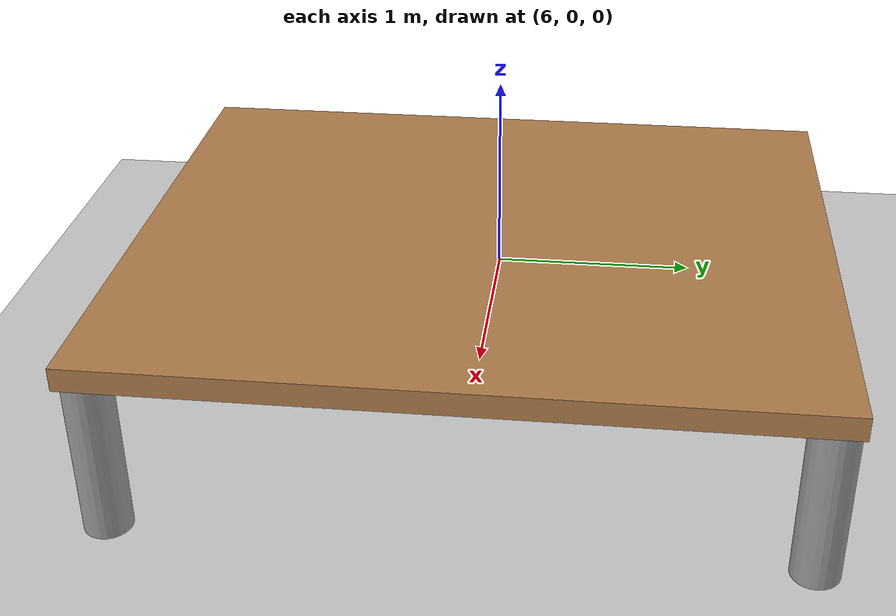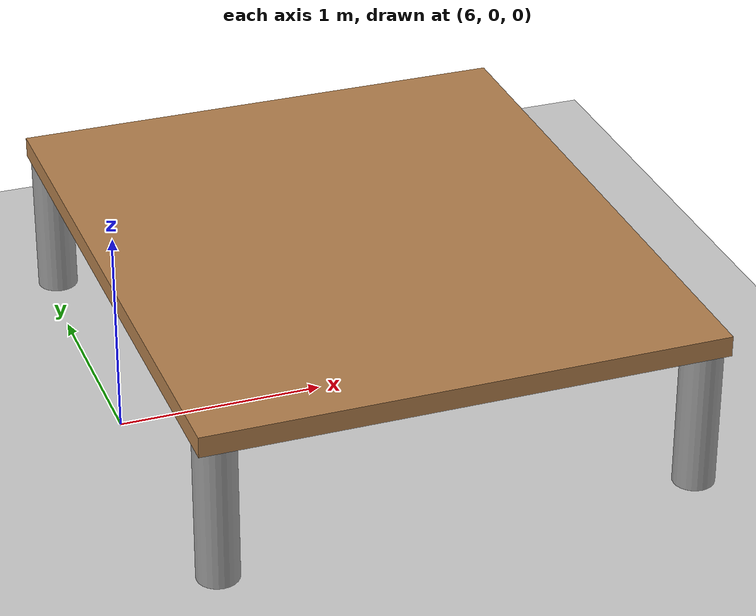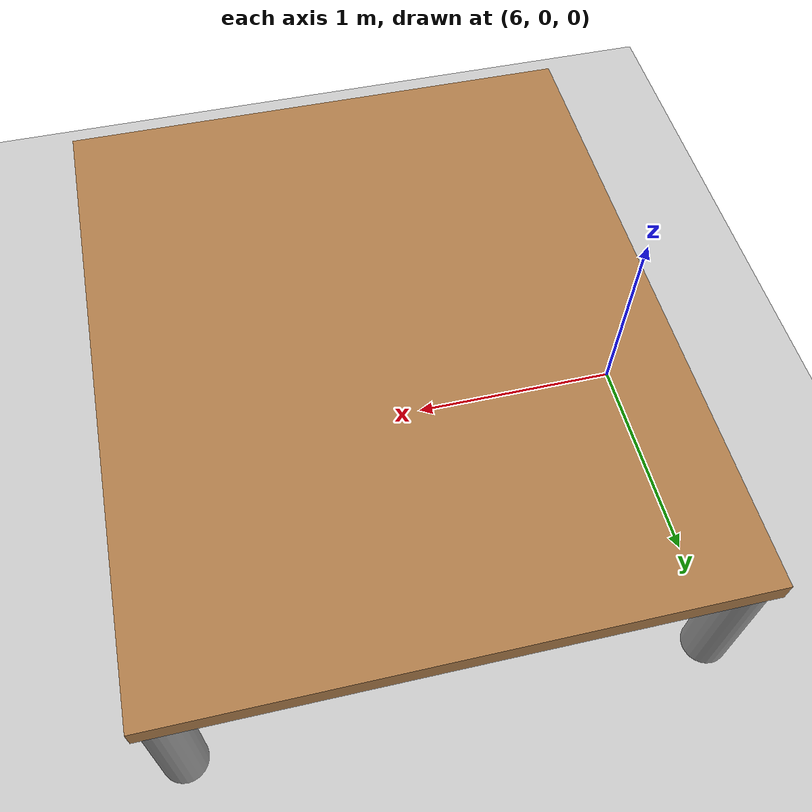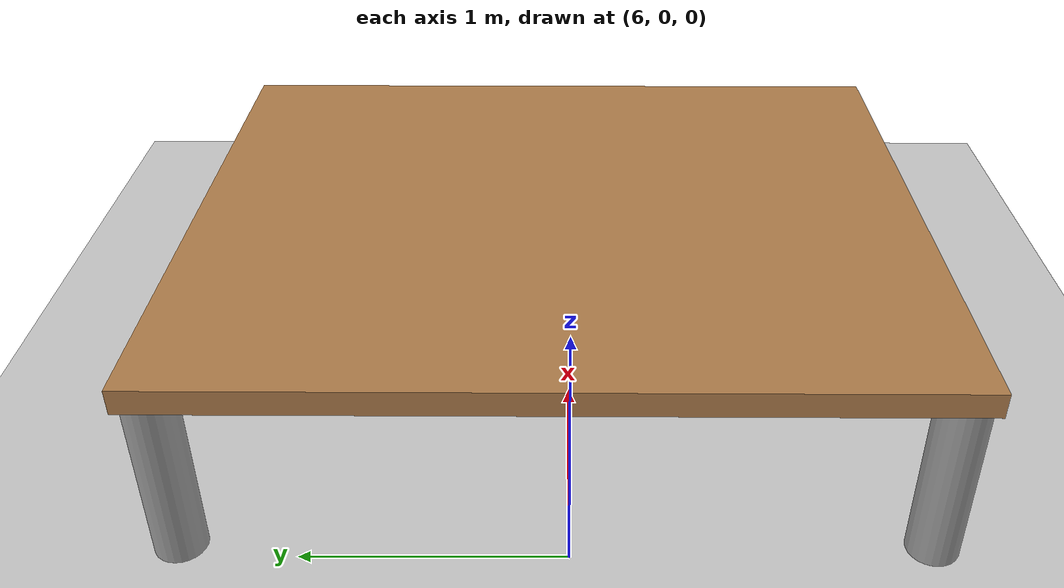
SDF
<sdf version="1.6">
 <world name="default">
  <light name="sun" type="directional">
   <pose>0 0 10 0 -0 0</pose>
   <diffuse>0.8 0.8 0.8 1</diffuse>
   <specular>0.1 0.1 0.1 1</specular>
   <attenuation>
    <range>1000</range>
    <constant>0.9</constant>
    <linear>0.01</linear>
    <quadratic>0.001</quadratic>
   </attenuation>
   <direction>-0.5 0.5 -1</direction>
  </light>
  <model name="ground_plane">
   <static>1</static>
   <link name="link">
    <collision name="collision">
     <geometry><plane><normal>0 0 1</normal><size>100 100</size></plane></geometry>
     <surface><friction><ode><mu>100</mu><mu2>50</mu2></ode></friction></surface>
    </collision>
    <visual name="visual">
     <cast_shadows>0</cast_shadows>
     <geometry><plane><normal>0 0 1</normal><size>100 100</size></plane></geometry>
     <material>
      <script><uri>file://media/materials/scripts/gazebo.material</uri><name>Gazebo/Grey</name></script>
     </material>
    </visual>
   </link>
  </model>
  <gravity>0 0 -9.8</gravity>
  <magnetic_field>6e-06 2.3e-05 -4.2e-05</magnetic_field>
  <atmosphere type="adiabatic"/>
  <physics name="default_physics" default="0" type="ode">
   <max_step_size>0.001</max_step_size>
   <real_time_factor>1</real_time_factor>
   <real_time_update_rate>1000</real_time_update_rate>
  </physics>
  <scene><ambient>0.4 0.4 0.4 1</ambient><background>0.7 0.7 0.7 1</background><shadows>1</shadows></scene>
  <spherical_coordinates>
   <surface_model>EARTH_WGS84</surface_model>
   <latitude_deg>0</latitude_deg>
   <longitude_deg>0</longitude_deg>
   <elevation>0</elevation>
   <heading_deg>0</heading_deg>
  </spherical_coordinates>
  <model name="table">
   <link name="link">
    <pose>0 0 0 0 -0 1.57</pose>
    <inertial>
     <inertia><ixx>1</ixx><ixy>0</ixy><ixz>0</ixz><iyy>1</iyy><iyz>0</iyz><izz>1</izz></inertia>
     <mass>1</mass>
    </inertial>
    <visual name="visual1">
     <pose>0 0 0.75 0 -0 0</pose>
     <geometry><box><size>3 2.5 0.1</size></box></geometry>
     <material>
      <script><uri>file://media/materials/scripts/gazebo.material</uri><name>Gazebo/Wood</name></script>
      <ambient>1 1 1 1</ambient>
      <diffuse>1 1 1 1</diffuse>
      <specular>0.2 0.2 0.2 1</specular>
      <emissive>0 0 0 1</emissive>
      <shader type="vertex"><normal_map>__default__</normal_map></shader>
     </material>
    </visual>
    <visual name="front_left_leg">
     <pose>1.4 1.15 0.35 0 -0 0</pose>
     <geometry><cylinder><radius>0.1</radius><length>0.7</length></cylinder></geometry>
     <material>
      <script><uri>file://media/materials/scripts/gazebo.material</uri><name>Gazebo/Grey</name></script>
      <ambient>0.3 0.3 0.3 1</ambient>
      <diffuse>0.7 0.7 0.7 1</diffuse>
      <specular>0.01 0.01 0.01 1</specular>
      <emissive>0 0 0 1</emissive>
      <shader type="vertex"><normal_map>__default__</normal_map></shader>
     </material>
    </visual>
    <visual name="back_right_leg">
     <pose>-1.4 -1.15 0.35 0 -0 0</pose>
     <geometry><cylinder><radius>0.1</radius><length>0.7</length></cylinder></geometry>
     <material>
      <script><uri>file://media/materials/scripts/gazebo.material</uri><name>Gazebo/Grey</name></script>
      <ambient>0.3 0.3 0.3 1</ambient>
      <diffuse>0.7 0.7 0.7 1</diffuse>
      <specular>0.01 0.01 0.01 1</specular>
      <emissive>0 0 0 1</emissive>
      <shader type="vertex"><normal_map>__default__</normal_map></shader>
     </material>
    </visual>
    <visual name="front_right_leg">
     <pose>1.4 -1.15 0.35 0 -0 0</pose>
     <geometry><cylinder><radius>0.1</radius><length>0.7</length></cylinder></geometry>
     <material>
      <script><uri>file://media/materials/scripts/gazebo.material</uri><name>Gazebo/Grey</name></script>
      <ambient>0.3 0.3 0.3 1</ambient>
      <diffuse>0.7 0.7 0.7 1</diffuse>
      <specular>0.01 0.01 0.01 1</specular>
      <emissive>0 0 0 1</emissive>
      <shader type="vertex"><normal_map>__default__</normal_map></shader>
     </material>
    </visual>
    <visual name="back_left_leg">
     <pose>-1.4 1.15 0.35 0 -0 0</pose>
     <geometry><cylinder><radius>0.1</radius><length>0.7</length></cylinder></geometry>
     <material>
      <script><uri>file://media/materials/scripts/gazebo.material</uri><name>Gazebo/Grey</name></script>
      <ambient>0.3 0.3 0.3 1</ambient>
      <diffuse>0.7 0.7 0.7 1</diffuse>
      <specular>0.01 0.01 0.01 1</specular>
      <emissive>0 0 0 1</emissive>
      <shader type="vertex"><normal_map>__default__</normal_map></shader>
     </material>
    </visual>
    <collision name="surface">
     <pose>0 0 0.75 0 -0 0</pose>
     <geometry><box><size>3 2.5 0.1</size></box></geometry>
     <surface>
      <friction>
       <ode><mu>0.6</mu><mu2>0.6</mu2><fdir1>0 0 0</fdir1><slip1>0</slip1><slip2>0</slip2></ode>
       <torsional>
        <coefficient>1</coefficient>
        <patch_radius>0</patch_radius>
        <surface_radius>0</surface_radius>
        <use_patch_radius>1</use_patch_radius>
        <ode><slip>0</slip></ode>
       </torsional>
      </friction>
      <bounce><restitution_coefficient>0</restitution_coefficient><threshold>1e+06</threshold></bounce>
      <contact>
       <collide_without_contact>0</collide_without_contact>
       <collide_without_contact_bitmask>1</collide_without_contact_bitmask>
       <collide_bitmask>1</collide_bitmask>
       <ode>
        <soft_cfm>0</soft_cfm>
        <soft_erp>0.2</soft_erp>
        <kp>1e+13</kp>
        <kd>1</kd>
        <max_vel>0.01</max_vel>
        <min_depth>0</min_depth>
       </ode>
       <bullet>
        <split_impulse>1</split_impulse>
        <split_impulse_penetration_threshold>-0.01</split_impulse_penetration_threshold>
        <soft_cfm>0</soft_cfm>
        <soft_erp>0.2</soft_erp>
        <kp>1e+13</kp>
        <kd>1</kd>
       </bullet>
      </contact>
     </surface>
    </collision>
    <collision name="front_left_leg">
     <pose>1.4 1.15 0.35 0 -0 0</pose>
     <geometry><cylinder><radius>0.1</radius><length>0.7</length></cylinder></geometry>
     <surface>
      <friction>
       <ode><mu>1</mu><mu2>1</mu2><fdir1>0 0 0</fdir1><slip1>0</slip1><slip2>0</slip2></ode>
       <torsional>
        <coefficient>1</coefficient>
        <patch_radius>0</patch_radius>
        <surface_radius>0</surface_radius>
        <use_patch_radius>1</use_patch_radius>
        <ode><slip>0</slip></ode>
       </torsional>
      </friction>
      <bounce><restitution_coefficient>0</restitution_coefficient><threshold>1e+06</threshold></bounce>
      <contact>
       <collide_without_contact>0</collide_without_contact>
       <collide_without_contact_bitmask>1</collide_without_contact_bitmask>
       <collide_bitmask>1</collide_bitmask>
       <ode>
        <soft_cfm>0</soft_cfm>
        <soft_erp>0.2</soft_erp>
        <kp>1e+13</kp>
        <kd>1</kd>
        <max_vel>0.01</max_vel>
        <min_depth>0</min_depth>
       </ode>
       <bullet>
        <split_impulse>1</split_impulse>
        <split_impulse_penetration_threshold>-0.01</split_impulse_penetration_threshold>
        <soft_cfm>0</soft_cfm>
        <soft_erp>0.2</soft_erp>
        <kp>1e+13</kp>
        <kd>1</kd>
       </bullet>
      </contact>
     </surface>
    </collision>
    <collision name="back_right_leg">
     <pose>-1.4 -1.15 0.35 0 -0 0</pose>
     <geometry><cylinder><radius>0.1</radius><length>0.7</length></cylinder></geometry>
     <surface>
      <friction>
       <ode><mu>1</mu><mu2>1</mu2><fdir1>0 0 0</fdir1><slip1>0</slip1><slip2>0</slip2></ode>
       <torsional>
        <coefficient>1</coefficient>
        <patch_radius>0</patch_radius>
        <surface_radius>0</surface_radius>
        <use_patch_radius>1</use_patch_radius>
        <ode><slip>0</slip></ode>
       </torsional>
      </friction>
      <bounce><restitution_coefficient>0</restitution_coefficient><threshold>1e+06</threshold></bounce>
      <contact>
       <collide_without_contact>0</collide_without_contact>
       <collide_without_contact_bitmask>1</collide_without_contact_bitmask>
       <collide_bitmask>1</collide_bitmask>
       <ode>
        <soft_cfm>0</soft_cfm>
        <soft_erp>0.2</soft_erp>
        <kp>1e+13</kp>
        <kd>1</kd>
        <max_vel>0.01</max_vel>
        <min_depth>0</min_depth>
       </ode>
       <bullet>
        <split_impulse>1</split_impulse>
        <split_impulse_penetration_threshold>-0.01</split_impulse_penetration_threshold>
        <soft_cfm>0</soft_cfm>
        <soft_erp>0.2</soft_erp>
        <kp>1e+13</kp>
        <kd>1</kd>
       </bullet>
      </contact>
     </surface>
    </collision>
    <collision name="front_right_leg">
     <pose>1.4 -1.15 0.35 0 -0 0</pose>
     <geometry><cylinder><radius>0.1</radius><length>0.7</length></cylinder></geometry>
     <surface>
      <friction>
       <ode><mu>1</mu><mu2>1</mu2><fdir1>0 0 0</fdir1><slip1>0</slip1><slip2>0</slip2></ode>
       <torsional>
        <coefficient>1</coefficient>
        <patch_radius>0</patch_radius>
        <surface_radius>0</surface_radius>
        <use_patch_radius>1</use_patch_radius>
        <ode><slip>0</slip></ode>
       </torsional>
      </friction>
      <bounce><restitution_coefficient>0</restitution_coefficient><threshold>1e+06</threshold></bounce>
      <contact>
       <collide_without_contact>0</collide_without_contact>
       <collide_without_contact_bitmask>1</collide_without_contact_bitmask>
       <collide_bitmask>1</collide_bitmask>
       <ode>
        <soft_cfm>0</soft_cfm>
        <soft_erp>0.2</soft_erp>
        <kp>1e+13</kp>
        <kd>1</kd>
        <max_vel>0.01</max_vel>
        <min_depth>0</min_depth>
       </ode>
       <bullet>
        <split_impulse>1</split_impulse>
        <split_impulse_penetration_threshold>-0.01</split_impulse_penetration_threshold>
        <soft_cfm>0</soft_cfm>
        <soft_erp>0.2</soft_erp>
        <kp>1e+13</kp>
        <kd>1</kd>
       </bullet>
      </contact>
     </surface>
    </collision>
    <collision name="back_left_leg">
     <pose>-1.4 1.15 0.35 0 -0 0</pose>
     <geometry><cylinder><radius>0.1</radius><length>0.7</length></cylinder></geometry>
     <surface>
      <friction>
       <ode><mu>1</mu><mu2>1</mu2><fdir1>0 0 0</fdir1><slip1>0</slip1><slip2>0</slip2></ode>
       <torsional>
        <coefficient>1</coefficient>
        <patch_radius>0</patch_radius>
        <surface_radius>0</surface_radius>
        <use_patch_radius>1</use_patch_radius>
        <ode><slip>0</slip></ode>
       </torsional>
      </friction>
      <bounce><restitution_coefficient>0</restitution_coefficient><threshold>1e+06</threshold></bounce>
      <contact>
       <collide_without_contact>0</collide_without_contact>
       <collide_without_contact_bitmask>1</collide_without_contact_bitmask>
       <collide_bitmask>1</collide_bitmask>
       <ode>
        <soft_cfm>0</soft_cfm>
        <soft_erp>0.2</soft_erp>
        <kp>1e+13</kp>
        <kd>1</kd>
        <max_vel>0.01</max_vel>
        <min_depth>0</min_depth>
       </ode>
       <bullet>
        <split_impulse>1</split_impulse>
        <split_impulse_penetration_threshold>-0.01</split_impulse_penetration_threshold>
        <soft_cfm>0</soft_cfm>
        <soft_erp>0.2</soft_erp>
        <kp>1e+13</kp>
        <kd>1</kd>
       </bullet>
      </contact>
     </surface>
    </collision>
   </link>
   <static>0</static>
   <pose>7.21471 0.047191 -3e-06 0 -3e-06 0</pose>
  </model>
 </world>
</sdf>
